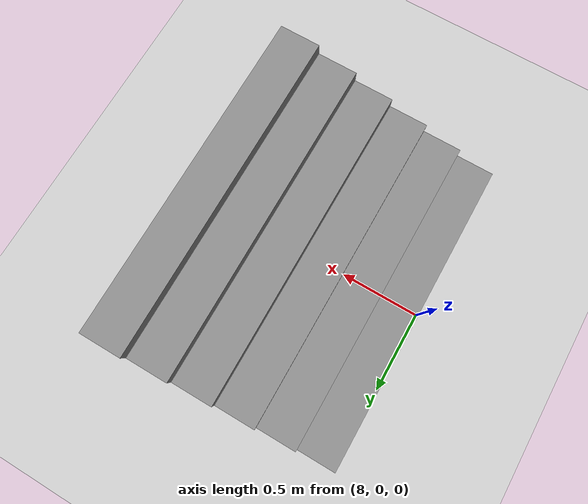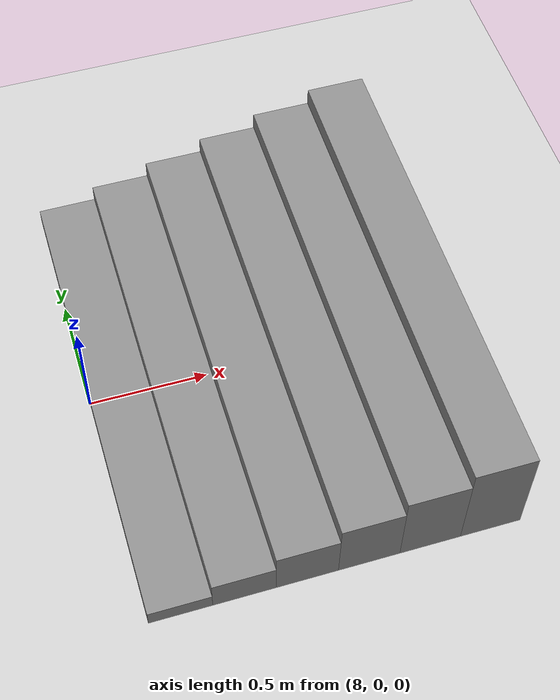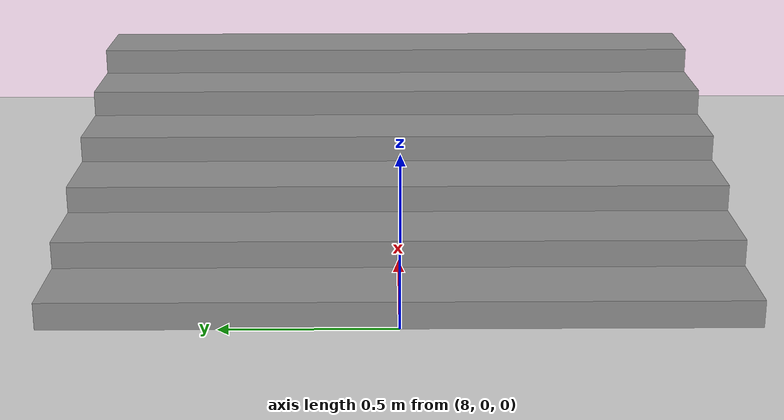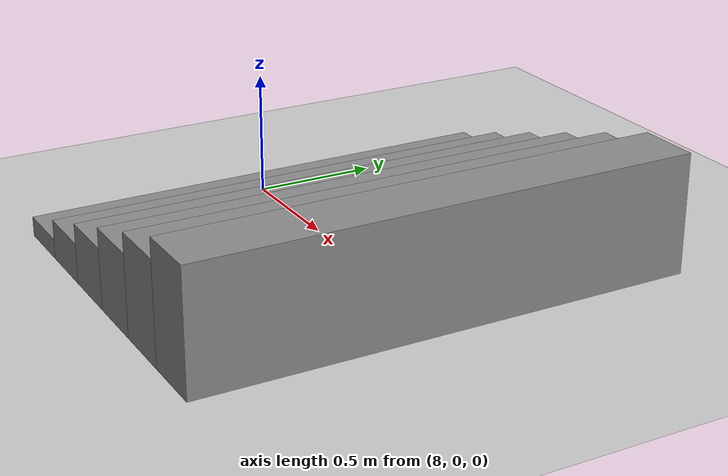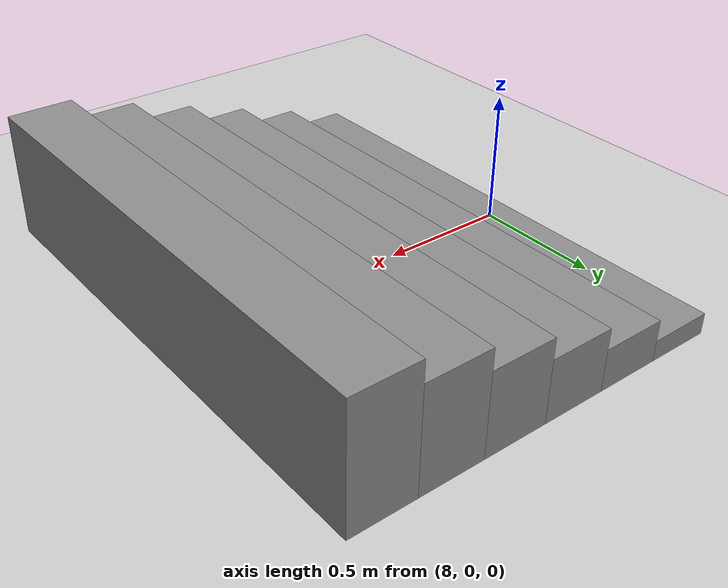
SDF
<sdf version="1.8">
 <world name="go2_rl">
  <model name="ground_plane">
   <static>true</static>
   <link name="link">
    <collision name="collision">
     <geometry><plane><normal>0 0 1</normal><size>200 200</size></plane></geometry>
     <surface><friction><ode><mu>1.0</mu><mu2>1.0</mu2></ode></friction></surface>
    </collision>
    <visual name="visual">
     <geometry><plane><normal>0 0 1</normal><size>200 200</size></plane></geometry>
     <material><ambient>0.8 0.8 0.8 1</ambient><diffuse>0.8 0.8 0.8 1</diffuse></material>
    </visual>
   </link>
  </model>
  <model name="staircase">
   <static>true</static>
   <link name="step_1">
    <pose>8.125 0 0.04 0 0 0</pose>
    <collision name="collision"><geometry><box><size>0.25 2 0.08</size></box></geometry></collision>
    <visual name="visual">
     <geometry><box><size>0.25 2 0.08</size></box></geometry>
     <material><ambient>0.55 0.55 0.55 1</ambient><diffuse>0.55 0.55 0.55 1</diffuse></material>
    </visual>
   </link>
   <link name="step_2">
    <pose>8.375 0 0.08 0 0 0</pose>
    <collision name="collision"><geometry><box><size>0.25 2 0.16</size></box></geometry></collision>
    <visual name="visual">
     <geometry><box><size>0.25 2 0.16</size></box></geometry>
     <material><ambient>0.55 0.55 0.55 1</ambient><diffuse>0.55 0.55 0.55 1</diffuse></material>
    </visual>
   </link>
   <link name="step_3">
    <pose>8.625 0 0.12 0 0 0</pose>
    <collision name="collision"><geometry><box><size>0.25 2 0.24</size></box></geometry></collision>
    <visual name="visual">
     <geometry><box><size>0.25 2 0.24</size></box></geometry>
     <material><ambient>0.55 0.55 0.55 1</ambient><diffuse>0.55 0.55 0.55 1</diffuse></material>
    </visual>
   </link>
   <link name="step_4">
    <pose>8.875 0 0.16 0 0 0</pose>
    <collision name="collision"><geometry><box><size>0.25 2 0.32</size></box></geometry></collision>
    <visual name="visual">
     <geometry><box><size>0.25 2 0.32</size></box></geometry>
     <material><ambient>0.55 0.55 0.55 1</ambient><diffuse>0.55 0.55 0.55 1</diffuse></material>
    </visual>
   </link>
   <link name="step_5">
    <pose>9.125 0 0.2 0 0 0</pose>
    <collision name="collision"><geometry><box><size>0.25 2 0.4</size></box></geometry></collision>
    <visual name="visual">
     <geometry><box><size>0.25 2 0.4</size></box></geometry>
     <material><ambient>0.55 0.55 0.55 1</ambient><diffuse>0.55 0.55 0.55 1</diffuse></material>
    </visual>
   </link>
   <link name="step_6">
    <pose>9.375 0 0.24 0 0 0</pose>
    <collision name="collision"><geometry><box><size>0.25 2 0.48</size></box></geometry></collision>
    <visual name="visual">
     <geometry><box><size>0.25 2 0.48</size></box></geometry>
     <material><ambient>0.55 0.55 0.55 1</ambient><diffuse>0.55 0.55 0.55 1</diffuse></material>
    </visual>
   </link>
  </model>
 </world>
</sdf>
